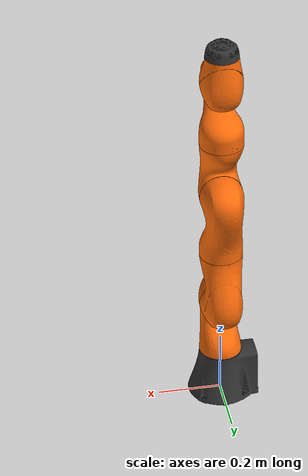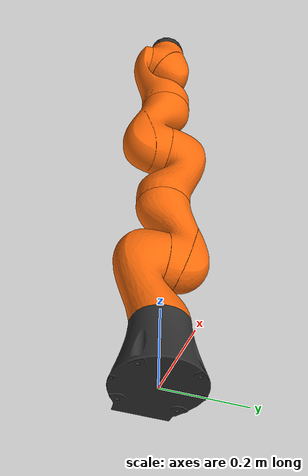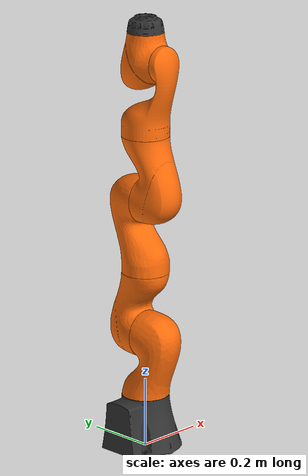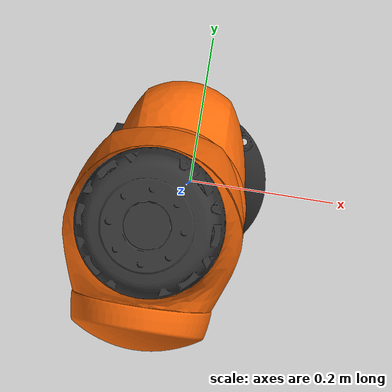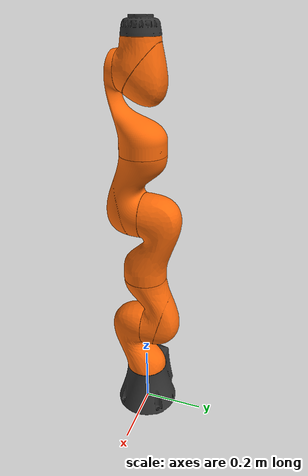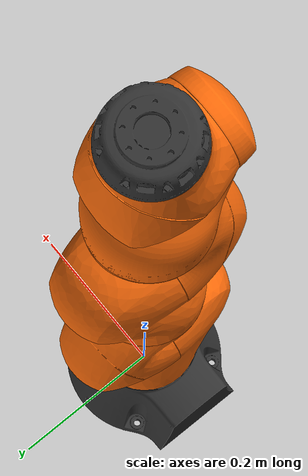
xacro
<?xml version="1.0"?>
<robot name="iiwa" xmlns:xacro="http://www.ros.org/wiki/xacro">
  <!-- Import Rviz colors -->
  <xacro:include filename="$(find iiwa_description)/urdf/materials.xacro" />
  <!--Import the lbr iiwa macro -->
  <xacro:include filename="$(find iiwa_description)/urdf/iiwa7.xacro"/>

  <xacro:arg name="hardware_interface" default="PositionJointInterface"/>
  <xacro:arg name="robot_name" default="iiwa"/>
  <xacro:arg name="origin_xyz" default="0 0 0"/>
  <xacro:arg name="origin_rpy" default="0 0 0"/>

  <!-- Fix to world just for testing -->
  <link name="world"/>

  <!--iiwa-->
  <xacro:iiwa7 hardware_interface="$(arg hardware_interface)" robot_name="$(arg robot_name)" parent="world">
    <origin xyz="$(arg origin_xyz)" rpy="$(arg origin_rpy)" />
  </xacro:iiwa7>

</robot>

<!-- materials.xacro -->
<robot>

  <material name="Black">
    <color rgba="0.0 0.0 0.0 1.0"/>
  </material>

  <material name="Blue">
    <color rgba="0.0 0.0 0.8 1.0"/>
  </material>

  <material name="Green">
    <color rgba="0.0 0.8 0.0 1.0"/>
  </material>

  <material name="Grey">
    <color rgba="0.2 0.2 0.2 1.0"/>
  </material>

  <material name="Orange">
    <color rgba="${255/255} ${108/255} ${10/255} 1.0"/>
  </material>

  <material name="Brown">
    <color rgba="${222/255} ${207/255} ${195/255} 1.0"/>
  </material>

  <material name="Red">
    <color rgba="0.8 0.0 0.0 1.0"/>
  </material>

  <material name="White">
    <color rgba="1.0 1.0 1.0 1.0"/>
  </material>

</robot>

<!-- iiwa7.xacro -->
<robot xmlns:xacro="http://www.ros.org/wiki/xacro">

  <!-- Import all Gazebo-customization elements, including Gazebo colors -->
  <xacro:include filename="$(find iiwa_description)/urdf/iiwa.gazebo.xacro" />
  <!-- Import Transmissions -->
  <xacro:include filename="$(find iiwa_description)/urdf/iiwa.transmission.xacro" />
  <!-- Include Utilities -->
  <xacro:include filename="$(find iiwa_description)/urdf/utilities.xacro" />

  <!-- some constants -->
  <xacro:property name="safety_controller_k_pos" value="100" />
  <xacro:property name="safety_controller_k_vel" value="2" />
  <xacro:property name="joint_damping" value="0.5" />
  <xacro:property name="max_effort" value="300"/>
  <xacro:property name="max_velocity" value="10"/>

  <xacro:macro name="iiwa7" params="parent hardware_interface robot_name *origin">

    <!--joint between {parent} and link_0-->
    <joint name="${parent}_${robot_name}_joint" type="fixed">
      <xacro:insert_block name="origin"/>
      <parent link="${parent}"/>
      <child link="${robot_name}_link_0"/>
    </joint>

    <link name="${robot_name}_link_0">
      <inertial>
        <origin xyz="-0.1 0 0.07" rpy="0 0 0"/>
        <mass value="5"/>
        <inertia ixx="0.05"  ixy="0"  ixz="0" iyy="0.06" iyz="0" izz="0.03" />
      </inertial>

      <visual>
        <origin xyz="0 0 0" rpy="0 0 0"/>
        <geometry>
          <mesh filename="package://iiwa_description/meshes/iiwa7/visual/link_0.stl"/>
        </geometry>
        <material name="Grey"/>
      </visual>

      <collision>
        <origin xyz="0 0 0" rpy="0 0 0"/>
        <geometry>
          <mesh filename="package://iiwa_description/meshes/iiwa7/collision/link_0.stl"/>
        </geometry>
      </collision>

    </link>

    <!-- joint between link_0 and link_1 -->
    <joint name="${robot_name}_joint_1" type="revolute">
      <parent link="${robot_name}_link_0"/>
      <child link="${robot_name}_link_1"/>
      <origin xyz="0 0 0.15" rpy="0 0 0"/>
      <axis xyz="0 0 1"/>
      <limit lower="${-170 * PI / 180}" upper="${170 * PI / 180}"
             effort="${max_effort}" velocity="${max_velocity}" />
      <safety_controller soft_lower_limit="${-168 * PI / 180}"
                         soft_upper_limit="${168 * PI / 180}"
                         k_position="${safety_controller_k_pos}"
                         k_velocity="${safety_controller_k_vel}"/>
      <dynamics damping="${joint_damping}"/>
    </joint>

    <link name="${robot_name}_link_1">
      <inertial>
        <origin xyz="0 -0.03 0.12" rpy="0 0 0"/>
        <mass value="3.4525"/>
        <inertia ixx="0.02183"  ixy="0"  ixz="0" iyy="0.007703" iyz="-0.003887" izz="0.02083" />
      </inertial>
      <visual>
        <origin xyz="0 0 0.0075" rpy="0 0 0"/>
        <geometry>
          <mesh filename="package://iiwa_description/meshes/iiwa7/visual/link_1.stl"/>
        </geometry>
        <material name="Orange"/>
      </visual>
      <collision>
        <origin xyz="0 0 0.0075" rpy="0 0 0"/>
        <geometry>
          <mesh filename="package://iiwa_description/meshes/iiwa7/collision/link_1.stl"/>
        </geometry>
      </collision>
    </link>

    <joint name="${robot_name}_joint_2" type="revolute">
      <parent link="${robot_name}_link_1"/>
      <child link="${robot_name}_link_2"/>
      <origin xyz="0 0 0.19" rpy="${PI / 2}   0 ${PI}"/>
      <axis xyz="0 0 1"/>
      <limit lower="${-120 * PI / 180}" upper="${120 * PI / 180}"
             effort="${max_effort}" velocity="${max_velocity}" />
      <safety_controller soft_lower_limit="${-118 * PI / 180}"
                         soft_upper_limit="${118 * PI / 180}"
                         k_position="${safety_controller_k_pos}"
                         k_velocity="${safety_controller_k_vel}"/>
      <dynamics damping="${joint_damping}"/>
    </joint>

    <link name="${robot_name}_link_2">
      <inertial>
        <origin xyz="0.0003 0.059 0.042" rpy="0 0 0"/>
        <mass value="3.4821"/>
        <inertia ixx="0.02076"  ixy="0"  ixz="-0.003626" iyy="0.02179" iyz="0" izz="0.00779" />
      </inertial>
      <visual>
        <origin xyz="0 0 0" rpy="0 0 0"/>
        <geometry>
          <mesh filename="package://iiwa_description/meshes/iiwa7/visual/link_2.stl"/>
        </geometry>
        <material name="Orange"/>
      </visual>

      <collision>
        <origin xyz="0 0 0" rpy="0 0 0"/>
        <geometry>
          <mesh filename="package://iiwa_description/meshes/iiwa7/collision/link_2.stl"/>
        </geometry>
      </collision>
    </link>

    <joint name="${robot_name}_joint_3" type="revolute">
      <parent link="${robot_name}_link_2"/>
      <child link="${robot_name}_link_3"/>
      <origin xyz="0 0.21 0" rpy="${PI / 2} 0 ${PI}"/>
      <axis xyz="0 0 1"/>
      <limit lower="${-170 * PI / 180}" upper="${170 * PI / 180}"
             effort="${max_effort}" velocity="${max_velocity}" />
      <safety_controller soft_lower_limit="${-168 * PI / 180}"
                         soft_upper_limit="${168 * PI / 180}"
                         k_position="${safety_controller_k_pos}"
                         k_velocity="${safety_controller_k_vel}"/>
      <dynamics damping="${joint_damping}"/>
    </joint>

    <link name="${robot_name}_link_3">
      <inertial>
        <origin xyz="0 0.03 0.13" rpy="0 0 0"/>
        <mass value="4.05623"/>
        <inertia ixx="0.03204"  ixy="0"  ixz="0" iyy="0.00972" iyz="0.006227" izz="0.03042" />
      </inertial>

      <visual>
        <origin xyz="0 0 -0.026" rpy="0 0 0"/>
        <geometry>
          <mesh filename="package://iiwa_description/meshes/iiwa7/visual/link_3.stl"/>
        </geometry>
        <material name="Orange"/>
      </visual>

      <collision>
        <origin xyz="0 0 -0.026" rpy="0 0 0"/>
        <geometry>
          <mesh filename="package://iiwa_description/meshes/iiwa7/collision/link_3.stl"/>
        </geometry>
      </collision>

    </link>

    <joint name="${robot_name}_joint_4" type="revolute">
      <parent link="${robot_name}_link_3"/>
      <child link="${robot_name}_link_4"/>
      <origin xyz="0 0 0.19" rpy="${PI / 2} 0 0"/>
      <axis xyz="0 0 1"/>
      <limit lower="${-120 * PI / 180}" upper="${120 * PI / 180}"
             effort="${max_effort}" velocity="${max_velocity}" />
      <safety_controller soft_lower_limit="${-118 * PI / 180}"
                         soft_upper_limit="${118 * PI / 180}"
                         k_position="${safety_controller_k_pos}"
                         k_velocity="${safety_controller_k_vel}"/>
      <dynamics damping="${joint_damping}"/>
    </joint>

    <link name="${robot_name}_link_4">
      <inertial>
        <origin xyz="0 0.067 0.034" rpy="0 0 0"/>
        <mass value="3.4822"/>
        <inertia ixx="0.02178"  ixy="0"  ixz="0" iyy="0.02075" iyz="-0.003625" izz="0.007785" />
      </inertial>

      <visual>
        <origin xyz="0 0 0" rpy="0 0 0"/>
        <geometry>
          <mesh filename="package://iiwa_description/meshes/iiwa7/visual/link_4.stl"/>
        </geometry>
        <material name="Orange"/>
      </visual>

      <collision>
        <origin xyz="0 0 0" rpy="0 0 0"/>
        <geometry>
          <mesh filename="package://iiwa_description/meshes/iiwa7/collision/link_4.stl"/>
        </geometry>
      </collision>
    </link>

    <joint name="${robot_name}_joint_5" type="revolute">
      <parent link="${robot_name}_link_4"/>
      <child link="${robot_name}_link_5"/>
      <origin xyz="0 0.21 0" rpy="${-PI / 2} ${PI} 0"/>
      <axis xyz="0 0 1"/>
      <limit lower="${-170 * PI / 180}" upper="${170 * PI / 180}"
             effort="${max_effort}" velocity="${max_velocity}" />
      <safety_controller soft_lower_limit="${-168 * PI / 180}"
                         soft_upper_limit="${168 * PI / 180}"
                         k_position="${safety_controller_k_pos}"
                         k_velocity="${safety_controller_k_vel}"/>
      <dynamics damping="${joint_damping}"/>
    </joint>

    <link name="${robot_name}_link_5">
      <inertial>
        <origin xyz="0.0001 0.021 0.076" rpy="0 0 0"/>
        <mass value="2.1633"/>
        <inertia ixx="0.01287"  ixy="0"  ixz="0" iyy="0.005708" iyz="-0.003946" izz="0.01112" />
      </inertial>

      <visual>
        <origin xyz="0 0 -0.026" rpy="0 0 0"/>
        <geometry>
          <mesh filename="package://iiwa_description/meshes/iiwa7/visual/link_5.stl"/>
        </geometry>
        <material name="Orange"/>
      </visual>

      <collision>
        <origin xyz="0 0 -0.026" rpy="0 0 0"/>
        <geometry>
          <mesh filename="package://iiwa_description/meshes/iiwa7/collision/link_5.stl"/>
        </geometry>
      </collision>
    </link>

    <joint name="${robot_name}_joint_6" type="revolute">
      <parent link="${robot_name}_link_5"/>
      <child link="${robot_name}_link_6"/>
      <origin xyz="0 0.06070 0.19" rpy="${PI / 2} 0 0"/>
      <axis xyz="0 0 1"/>
      <limit lower="${-120 * PI / 180}" upper="${120 * PI / 180}"
             effort="${max_effort}" velocity="${max_velocity}" />
      <safety_controller soft_lower_limit="${-118 * PI / 180}"
                         soft_upper_limit="${118 * PI / 180}"
                         k_position="${safety_controller_k_pos}"
                         k_velocity="${safety_controller_k_vel}"/>
      <dynamics damping="${joint_damping}"/>
    </joint>

    <link name="${robot_name}_link_6">
      <inertial>
        <origin xyz="0 0.0006 0.0004" rpy="0 0 0"/>
        <mass value="2.3466"/>
        <inertia ixx="0.006509"  ixy="0"  ixz="0" iyy="0.006259" iyz="0.00031891" izz="0.004527" />
      </inertial>

      <visual>
        <origin xyz="0 0 0" rpy="0 0 0"/>
        <geometry>
          <mesh filename="package://iiwa_description/meshes/iiwa7/visual/link_6.stl"/>
        </geometry>
        <material name="Orange"/>
      </visual>

      <collision>
        <origin xyz="0 0 0" rpy="0 0 0"/>
        <geometry>
          <mesh filename="package://iiwa_description/meshes/iiwa7/collision/link_6.stl"/>
        </geometry>
      </collision>
    </link>

    <joint name="${robot_name}_joint_7" type="revolute">
      <parent link="${robot_name}_link_6"/>
      <child link="${robot_name}_link_7"/>
      <origin xyz="0 0.081 0.06070" rpy="${- PI / 2} ${PI} 0"/>
      <axis xyz="0 0 1"/>
      <limit lower="${-175 * PI / 180}" upper="${175 * PI / 180}"
             effort="${max_effort}" velocity="${max_velocity}" />
      <safety_controller soft_lower_limit="${-173 * PI / 180}"
                         soft_upper_limit="${173 * PI / 180}"
                         k_position="${safety_controller_k_pos}"
                         k_velocity="${safety_controller_k_vel}"/>
      <dynamics damping="${joint_damping}"/>
    </joint>

    <link name="${robot_name}_link_7">
      <inertial>
        <origin xyz="0 0 0.02" rpy="0 0 0"/>
        <mass value="3.129"/>
        <inertia ixx="0.01464"  ixy="0.0005912"  ixz="0" iyy="0.01465" iyz="0" izz="0.002872" />
      </inertial>

      <visual>
        <origin xyz="0 0 -0.0005" rpy="0 0 0"/>
        <geometry>
          <mesh filename="package://iiwa_description/meshes/iiwa7/visual/link_7.stl"/>
        </geometry>
        <material name="Grey"/>
      </visual>

      <collision>
        <origin xyz="0 0 -0.0005" rpy="0 0 0"/>
        <geometry>
          <mesh filename="package://iiwa_description/meshes/iiwa7/collision/link_7.stl"/>
        </geometry>
      </collision>
    </link>

    <joint name="${robot_name}_joint_ee" type="fixed">
      <parent link="${robot_name}_link_7"/>
      <child link="${robot_name}_link_ee"/>
      <origin xyz="0 0 0.045" rpy="0 0 0"/>
    </joint>

    <link name="${robot_name}_link_ee">
    </link>

    <!--Extensions -->
    <xacro:iiwa_gazebo robot_name="${robot_name}" />
    <xacro:iiwa_transmission hardware_interface="${hardware_interface}"/>

  </xacro:macro>

</robot>

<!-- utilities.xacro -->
<robot name="iiwa" xmlns:xacro="http://www.ros.org/wiki/xacro">

  <xacro:property name="PI" value="3.1415926535897931"/>

<!-- The following macros are adapted from the LWR 4 definitions of the RCPRG - https://github.com/RCPRG-ros-pkg/lwr_robot -->
  <!--Little helper macros to define the inertia matrix needed for links.-->
  <!--Cuboid-->
  <xacro:macro name="cuboid_inertia" params="width height length mass">
    <inertia ixx="${mass * (height * height + length * length) / 12)}"
             iyy="${mass * (width * width + length * length) / 12)}"
             izz="${mass * (width * width + height * height) / 12)}"
             ixy="0" iyz="0" ixz="0"/>
  </xacro:macro>

  <!--Cylinder: length is along the y-axis! -->
  <xacro:macro name="cylinder_inertia" params="radius length mass">
    <inertia ixx="${mass * (3 * radius * radius + length * length) / 12)}"
             iyy="${mass * radius* radius / 2)}"
             izz="${mass * (3 * radius * radius + length * length) / 12)}"
             ixy="0" iyz="0" ixz="0"/>
  </xacro:macro>

</robot>
